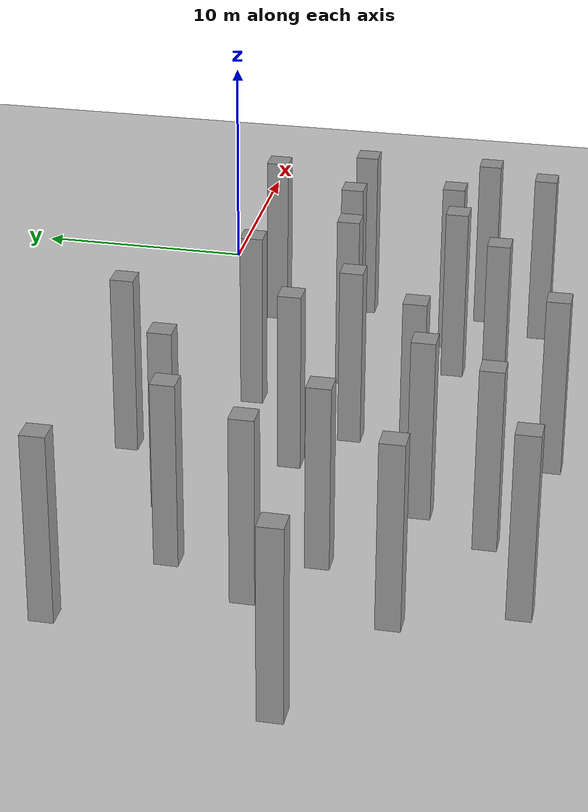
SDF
<sdf version="1.7">
 <world name="default">
  <model name="ground_plane">
   <static>1</static>
   <link name="link">
    <collision name="collision">
     <geometry><plane><normal>0 0 1</normal><size>100 100</size></plane></geometry>
     <surface>
      <contact><collide_bitmask>65535</collide_bitmask></contact>
      <friction><ode><mu>100</mu><mu2>50</mu2></ode></friction>
     </surface>
    </collision>
    <visual name="visual">
     <cast_shadows>0</cast_shadows>
     <geometry><plane><normal>0 0 1</normal><size>100 100</size></plane></geometry>
     <material>
      <script><uri>file://media/materials/scripts/gazebo.material</uri><name>Gazebo/Grey</name></script>
     </material>
    </visual>
   </link>
  </model>
  <model name="unit_box_static56">
   <link name="link">
    <inertial>
     <mass>1</mass>
     <inertia>
      <ixx>0.166667</ixx>
      <ixy>0</ixy>
      <ixz>0</ixz>
      <iyy>0.166667</iyy>
      <iyz>0</iyz>
      <izz>0.166667</izz>
     </inertia>
    </inertial>
    <visual name="visual">
     <geometry><box><size>1 1 8</size></box></geometry>
     <material>
      <script><name>Gazebo/Grey</name><uri>file://media/materials/scripts/gazebo.material</uri></script>
      <shader type="pixel"/>
     </material>
    </visual>
    <collision name="collision">
     <geometry><box><size>1 1 8</size></box></geometry>
     <surface>
      <friction>
       <ode><mu>1</mu><mu2>1</mu2><fdir1>0 0 0</fdir1><slip1>0</slip1><slip2>0</slip2></ode>
       <torsional>
        <coefficient>1</coefficient>
        <patch_radius>0</patch_radius>
        <surface_radius>0</surface_radius>
        <use_patch_radius>1</use_patch_radius>
        <ode><slip>0</slip></ode>
       </torsional>
      </friction>
      <bounce><restitution_coefficient>0</restitution_coefficient><threshold>1e+06</threshold></bounce>
      <contact>
       <collide_without_contact>0</collide_without_contact>
       <collide_without_contact_bitmask>1</collide_without_contact_bitmask>
       <collide_bitmask>1</collide_bitmask>
       <ode>
        <soft_cfm>0</soft_cfm>
        <soft_erp>0.2</soft_erp>
        <kp>1e+13</kp>
        <kd>1</kd>
        <max_vel>0.01</max_vel>
        <min_depth>0</min_depth>
       </ode>
       <bullet>
        <split_impulse>1</split_impulse>
        <split_impulse_penetration_threshold>-0.01</split_impulse_penetration_threshold>
        <soft_cfm>0</soft_cfm>
        <soft_erp>0.2</soft_erp>
        <kp>1e+13</kp>
        <kd>1</kd>
       </bullet>
      </contact>
     </surface>
    </collision>
   </link>
   <static>1</static>
   <pose>-10.8013 -12.5136 4 0 -0 0</pose>
  </model>
  <model name="unit_box_static57">
   <link name="link">
    <inertial>
     <mass>1</mass>
     <inertia>
      <ixx>0.166667</ixx>
      <ixy>0</ixy>
      <ixz>0</ixz>
      <iyy>0.166667</iyy>
      <iyz>0</iyz>
      <izz>0.166667</izz>
     </inertia>
    </inertial>
    <visual name="visual">
     <geometry><box><size>1 1 8</size></box></geometry>
     <material>
      <script><name>Gazebo/Grey</name><uri>file://media/materials/scripts/gazebo.material</uri></script>
      <shader type="pixel"/>
     </material>
    </visual>
    <collision name="collision">
     <geometry><box><size>1 1 8</size></box></geometry>
     <surface>
      <friction>
       <ode><mu>1</mu><mu2>1</mu2><fdir1>0 0 0</fdir1><slip1>0</slip1><slip2>0</slip2></ode>
       <torsional>
        <coefficient>1</coefficient>
        <patch_radius>0</patch_radius>
        <surface_radius>0</surface_radius>
        <use_patch_radius>1</use_patch_radius>
        <ode><slip>0</slip></ode>
       </torsional>
      </friction>
      <bounce><restitution_coefficient>0</restitution_coefficient><threshold>1e+06</threshold></bounce>
      <contact>
       <collide_without_contact>0</collide_without_contact>
       <collide_without_contact_bitmask>1</collide_without_contact_bitmask>
       <collide_bitmask>1</collide_bitmask>
       <ode>
        <soft_cfm>0</soft_cfm>
        <soft_erp>0.2</soft_erp>
        <kp>1e+13</kp>
        <kd>1</kd>
        <max_vel>0.01</max_vel>
        <min_depth>0</min_depth>
       </ode>
       <bullet>
        <split_impulse>1</split_impulse>
        <split_impulse_penetration_threshold>-0.01</split_impulse_penetration_threshold>
        <soft_cfm>0</soft_cfm>
        <soft_erp>0.2</soft_erp>
        <kp>1e+13</kp>
        <kd>1</kd>
       </bullet>
      </contact>
     </surface>
    </collision>
   </link>
   <static>1</static>
   <pose>-39.0012 -9.92582 4 0 -0 0</pose>
  </model>
  <model name="unit_box_static58">
   <link name="link">
    <inertial>
     <mass>1</mass>
     <inertia>
      <ixx>0.166667</ixx>
      <ixy>0</ixy>
      <ixz>0</ixz>
      <iyy>0.166667</iyy>
      <iyz>0</iyz>
      <izz>0.166667</izz>
     </inertia>
    </inertial>
    <visual name="visual">
     <geometry><box><size>1 1 8</size></box></geometry>
     <material>
      <script><name>Gazebo/Grey</name><uri>file://media/materials/scripts/gazebo.material</uri></script>
      <shader type="pixel"/>
     </material>
    </visual>
    <collision name="collision">
     <geometry><box><size>1 1 8</size></box></geometry>
     <surface>
      <friction>
       <ode><mu>1</mu><mu2>1</mu2><fdir1>0 0 0</fdir1><slip1>0</slip1><slip2>0</slip2></ode>
       <torsional>
        <coefficient>1</coefficient>
        <patch_radius>0</patch_radius>
        <surface_radius>0</surface_radius>
        <use_patch_radius>1</use_patch_radius>
        <ode><slip>0</slip></ode>
       </torsional>
      </friction>
      <bounce><restitution_coefficient>0</restitution_coefficient><threshold>1e+06</threshold></bounce>
      <contact>
       <collide_without_contact>0</collide_without_contact>
       <collide_without_contact_bitmask>1</collide_without_contact_bitmask>
       <collide_bitmask>1</collide_bitmask>
       <ode>
        <soft_cfm>0</soft_cfm>
        <soft_erp>0.2</soft_erp>
        <kp>1e+13</kp>
        <kd>1</kd>
        <max_vel>0.01</max_vel>
        <min_depth>0</min_depth>
       </ode>
       <bullet>
        <split_impulse>1</split_impulse>
        <split_impulse_penetration_threshold>-0.01</split_impulse_penetration_threshold>
        <soft_cfm>0</soft_cfm>
        <soft_erp>0.2</soft_erp>
        <kp>1e+13</kp>
        <kd>1</kd>
       </bullet>
      </contact>
     </surface>
    </collision>
   </link>
   <static>1</static>
   <pose>-34.4356 -0.088908 4 0 -0 0</pose>
  </model>
  <model name="unit_box_static63">
   <link name="link">
    <inertial>
     <mass>1</mass>
     <inertia>
      <ixx>0.166667</ixx>
      <ixy>0</ixy>
      <ixz>0</ixz>
      <iyy>0.166667</iyy>
      <iyz>0</iyz>
      <izz>0.166667</izz>
     </inertia>
    </inertial>
    <visual name="visual">
     <geometry><box><size>1 1 8</size></box></geometry>
     <material>
      <script><name>Gazebo/Grey</name><uri>file://media/materials/scripts/gazebo.material</uri></script>
      <shader type="pixel"/>
     </material>
    </visual>
    <collision name="collision">
     <geometry><box><size>1 1 8</size></box></geometry>
     <surface>
      <friction>
       <ode><mu>1</mu><mu2>1</mu2><fdir1>0 0 0</fdir1><slip1>0</slip1><slip2>0</slip2></ode>
       <torsional>
        <coefficient>1</coefficient>
        <patch_radius>0</patch_radius>
        <surface_radius>0</surface_radius>
        <use_patch_radius>1</use_patch_radius>
        <ode><slip>0</slip></ode>
       </torsional>
      </friction>
      <bounce><restitution_coefficient>0</restitution_coefficient><threshold>1e+06</threshold></bounce>
      <contact>
       <collide_without_contact>0</collide_without_contact>
       <collide_without_contact_bitmask>1</collide_without_contact_bitmask>
       <collide_bitmask>1</collide_bitmask>
       <ode>
        <soft_cfm>0</soft_cfm>
        <soft_erp>0.2</soft_erp>
        <kp>1e+13</kp>
        <kd>1</kd>
        <max_vel>0.01</max_vel>
        <min_depth>0</min_depth>
       </ode>
       <bullet>
        <split_impulse>1</split_impulse>
        <split_impulse_penetration_threshold>-0.01</split_impulse_penetration_threshold>
        <soft_cfm>0</soft_cfm>
        <soft_erp>0.2</soft_erp>
        <kp>1e+13</kp>
        <kd>1</kd>
       </bullet>
      </contact>
     </surface>
    </collision>
   </link>
   <static>1</static>
   <pose>-29.5161 -3.72993 4 0 -0 0</pose>
  </model>
  <model name="unit_box_static65">
   <link name="link">
    <inertial>
     <mass>1</mass>
     <inertia>
      <ixx>0.166667</ixx>
      <ixy>0</ixy>
      <ixz>0</ixz>
      <iyy>0.166667</iyy>
      <iyz>0</iyz>
      <izz>0.166667</izz>
     </inertia>
    </inertial>
    <visual name="visual">
     <geometry><box><size>1 1 8</size></box></geometry>
     <material>
      <script><name>Gazebo/Grey</name><uri>file://media/materials/scripts/gazebo.material</uri></script>
      <shader type="pixel"/>
     </material>
    </visual>
    <collision name="collision">
     <geometry><box><size>1 1 8</size></box></geometry>
     <surface>
      <friction>
       <ode><mu>1</mu><mu2>1</mu2><fdir1>0 0 0</fdir1><slip1>0</slip1><slip2>0</slip2></ode>
       <torsional>
        <coefficient>1</coefficient>
        <patch_radius>0</patch_radius>
        <surface_radius>0</surface_radius>
        <use_patch_radius>1</use_patch_radius>
        <ode><slip>0</slip></ode>
       </torsional>
      </friction>
      <bounce><restitution_coefficient>0</restitution_coefficient><threshold>1e+06</threshold></bounce>
      <contact>
       <collide_without_contact>0</collide_without_contact>
       <collide_without_contact_bitmask>1</collide_without_contact_bitmask>
       <collide_bitmask>1</collide_bitmask>
       <ode>
        <soft_cfm>0</soft_cfm>
        <soft_erp>0.2</soft_erp>
        <kp>1e+13</kp>
        <kd>1</kd>
        <max_vel>0.01</max_vel>
        <min_depth>0</min_depth>
       </ode>
       <bullet>
        <split_impulse>1</split_impulse>
        <split_impulse_penetration_threshold>-0.01</split_impulse_penetration_threshold>
        <soft_cfm>0</soft_cfm>
        <soft_erp>0.2</soft_erp>
        <kp>1e+13</kp>
        <kd>1</kd>
       </bullet>
      </contact>
     </surface>
    </collision>
   </link>
   <static>1</static>
   <pose>-20.7592 -6.89951 4 0 -0 0</pose>
  </model>
  <model name="unit_box_static67">
   <link name="link">
    <inertial>
     <mass>1</mass>
     <inertia>
      <ixx>0.166667</ixx>
      <ixy>0</ixy>
      <ixz>0</ixz>
      <iyy>0.166667</iyy>
      <iyz>0</iyz>
      <izz>0.166667</izz>
     </inertia>
    </inertial>
    <visual name="visual">
     <geometry><box><size>1 1 8</size></box></geometry>
     <material>
      <script><name>Gazebo/Grey</name><uri>file://media/materials/scripts/gazebo.material</uri></script>
      <shader type="pixel"/>
     </material>
    </visual>
    <collision name="collision">
     <geometry><box><size>1 1 8</size></box></geometry>
     <surface>
      <friction>
       <ode><mu>1</mu><mu2>1</mu2><fdir1>0 0 0</fdir1><slip1>0</slip1><slip2>0</slip2></ode>
       <torsional>
        <coefficient>1</coefficient>
        <patch_radius>0</patch_radius>
        <surface_radius>0</surface_radius>
        <use_patch_radius>1</use_patch_radius>
        <ode><slip>0</slip></ode>
       </torsional>
      </friction>
      <bounce><restitution_coefficient>0</restitution_coefficient><threshold>1e+06</threshold></bounce>
      <contact>
       <collide_without_contact>0</collide_without_contact>
       <collide_without_contact_bitmask>1</collide_without_contact_bitmask>
       <collide_bitmask>1</collide_bitmask>
       <ode>
        <soft_cfm>0</soft_cfm>
        <soft_erp>0.2</soft_erp>
        <kp>1e+13</kp>
        <kd>1</kd>
        <max_vel>0.01</max_vel>
        <min_depth>0</min_depth>
       </ode>
       <bullet>
        <split_impulse>1</split_impulse>
        <split_impulse_penetration_threshold>-0.01</split_impulse_penetration_threshold>
        <soft_cfm>0</soft_cfm>
        <soft_erp>0.2</soft_erp>
        <kp>1e+13</kp>
        <kd>1</kd>
       </bullet>
      </contact>
     </surface>
    </collision>
   </link>
   <static>1</static>
   <pose>-28.5535 -9.61759 4 0 -0 0</pose>
  </model>
  <model name="unit_box_static70">
   <link name="link">
    <inertial>
     <mass>1</mass>
     <inertia>
      <ixx>0.166667</ixx>
      <ixy>0</ixy>
      <ixz>0</ixz>
      <iyy>0.166667</iyy>
      <iyz>0</iyz>
      <izz>0.166667</izz>
     </inertia>
    </inertial>
    <visual name="visual">
     <geometry><box><size>1 1 8</size></box></geometry>
     <material>
      <script><name>Gazebo/Grey</name><uri>file://media/materials/scripts/gazebo.material</uri></script>
      <shader type="pixel"/>
     </material>
    </visual>
    <collision name="collision">
     <geometry><box><size>1 1 8</size></box></geometry>
     <surface>
      <friction>
       <ode><mu>1</mu><mu2>1</mu2><fdir1>0 0 0</fdir1><slip1>0</slip1><slip2>0</slip2></ode>
       <torsional>
        <coefficient>1</coefficient>
        <patch_radius>0</patch_radius>
        <surface_radius>0</surface_radius>
        <use_patch_radius>1</use_patch_radius>
        <ode><slip>0</slip></ode>
       </torsional>
      </friction>
      <bounce><restitution_coefficient>0</restitution_coefficient><threshold>1e+06</threshold></bounce>
      <contact>
       <collide_without_contact>0</collide_without_contact>
       <collide_without_contact_bitmask>1</collide_without_contact_bitmask>
       <collide_bitmask>1</collide_bitmask>
       <ode>
        <soft_cfm>0</soft_cfm>
        <soft_erp>0.2</soft_erp>
        <kp>1e+13</kp>
        <kd>1</kd>
        <max_vel>0.01</max_vel>
        <min_depth>0</min_depth>
       </ode>
       <bullet>
        <split_impulse>1</split_impulse>
        <split_impulse_penetration_threshold>-0.01</split_impulse_penetration_threshold>
        <soft_cfm>0</soft_cfm>
        <soft_erp>0.2</soft_erp>
        <kp>1e+13</kp>
        <kd>1</kd>
       </bullet>
      </contact>
     </surface>
    </collision>
   </link>
   <static>1</static>
   <pose>-6.10529 -15.982 4 0 -0 0</pose>
  </model>
  <model name="unit_box_static74">
   <link name="link">
    <inertial>
     <mass>1</mass>
     <inertia>
      <ixx>0.166667</ixx>
      <ixy>0</ixy>
      <ixz>0</ixz>
      <iyy>0.166667</iyy>
      <iyz>0</iyz>
      <izz>0.166667</izz>
     </inertia>
    </inertial>
    <visual name="visual">
     <geometry><box><size>1 1 8</size></box></geometry>
     <material>
      <script><name>Gazebo/Grey</name><uri>file://media/materials/scripts/gazebo.material</uri></script>
      <shader type="pixel"/>
     </material>
    </visual>
    <collision name="collision">
     <geometry><box><size>1 1 8</size></box></geometry>
     <surface>
      <friction>
       <ode><mu>1</mu><mu2>1</mu2><fdir1>0 0 0</fdir1><slip1>0</slip1><slip2>0</slip2></ode>
       <torsional>
        <coefficient>1</coefficient>
        <patch_radius>0</patch_radius>
        <surface_radius>0</surface_radius>
        <use_patch_radius>1</use_patch_radius>
        <ode><slip>0</slip></ode>
       </torsional>
      </friction>
      <bounce><restitution_coefficient>0</restitution_coefficient><threshold>1e+06</threshold></bounce>
      <contact>
       <collide_without_contact>0</collide_without_contact>
       <collide_without_contact_bitmask>1</collide_without_contact_bitmask>
       <collide_bitmask>1</collide_bitmask>
       <ode>
        <soft_cfm>0</soft_cfm>
        <soft_erp>0.2</soft_erp>
        <kp>1e+13</kp>
        <kd>1</kd>
        <max_vel>0.01</max_vel>
        <min_depth>0</min_depth>
       </ode>
       <bullet>
        <split_impulse>1</split_impulse>
        <split_impulse_penetration_threshold>-0.01</split_impulse_penetration_threshold>
        <soft_cfm>0</soft_cfm>
        <soft_erp>0.2</soft_erp>
        <kp>1e+13</kp>
        <kd>1</kd>
       </bullet>
      </contact>
     </surface>
    </collision>
   </link>
   <static>1</static>
   <pose>-31.6275 -7.28073 4 0 -0 0</pose>
  </model>
  <model name="unit_box_static93">
   <link name="link">
    <inertial>
     <mass>1</mass>
     <inertia>
      <ixx>0.166667</ixx>
      <ixy>0</ixy>
      <ixz>0</ixz>
      <iyy>0.166667</iyy>
      <iyz>0</iyz>
      <izz>0.166667</izz>
     </inertia>
    </inertial>
    <visual name="visual">
     <geometry><box><size>1 1 8</size></box></geometry>
     <material>
      <script><name>Gazebo/Grey</name><uri>file://media/materials/scripts/gazebo.material</uri></script>
      <shader type="pixel"/>
     </material>
    </visual>
    <collision name="collision">
     <geometry><box><size>1 1 8</size></box></geometry>
     <surface>
      <friction>
       <ode><mu>1</mu><mu2>1</mu2><fdir1>0 0 0</fdir1><slip1>0</slip1><slip2>0</slip2></ode>
       <torsional>
        <coefficient>1</coefficient>
        <patch_radius>0</patch_radius>
        <surface_radius>0</surface_radius>
        <use_patch_radius>1</use_patch_radius>
        <ode><slip>0</slip></ode>
       </torsional>
      </friction>
      <bounce><restitution_coefficient>0</restitution_coefficient><threshold>1e+06</threshold></bounce>
      <contact>
       <collide_without_contact>0</collide_without_contact>
       <collide_without_contact_bitmask>1</collide_without_contact_bitmask>
       <collide_bitmask>1</collide_bitmask>
       <ode>
        <soft_cfm>0</soft_cfm>
        <soft_erp>0.2</soft_erp>
        <kp>1e+13</kp>
        <kd>1</kd>
        <max_vel>0.01</max_vel>
        <min_depth>0</min_depth>
       </ode>
       <bullet>
        <split_impulse>1</split_impulse>
        <split_impulse_penetration_threshold>-0.01</split_impulse_penetration_threshold>
        <soft_cfm>0</soft_cfm>
        <soft_erp>0.2</soft_erp>
        <kp>1e+13</kp>
        <kd>1</kd>
       </bullet>
      </contact>
     </surface>
    </collision>
   </link>
   <static>1</static>
   <pose>-25.8008 -15.9007 4 0 -0 0</pose>
  </model>
  <model name="unit_box_static109">
   <link name="link">
    <inertial>
     <mass>1</mass>
     <inertia>
      <ixx>0.166667</ixx>
      <ixy>0</ixy>
      <ixz>0</ixz>
      <iyy>0.166667</iyy>
      <iyz>0</iyz>
      <izz>0.166667</izz>
     </inertia>
    </inertial>
    <visual name="visual">
     <geometry><box><size>1 1 8</size></box></geometry>
     <material>
      <script><name>Gazebo/Grey</name><uri>file://media/materials/scripts/gazebo.material</uri></script>
      <shader type="pixel"/>
     </material>
    </visual>
    <collision name="collision">
     <geometry><box><size>1 1 8</size></box></geometry>
     <surface>
      <friction>
       <ode><mu>1</mu><mu2>1</mu2><fdir1>0 0 0</fdir1><slip1>0</slip1><slip2>0</slip2></ode>
       <torsional>
        <coefficient>1</coefficient>
        <patch_radius>0</patch_radius>
        <surface_radius>0</surface_radius>
        <use_patch_radius>1</use_patch_radius>
        <ode><slip>0</slip></ode>
       </torsional>
      </friction>
      <bounce><restitution_coefficient>0</restitution_coefficient><threshold>1e+06</threshold></bounce>
      <contact>
       <collide_without_contact>0</collide_without_contact>
       <collide_without_contact_bitmask>1</collide_without_contact_bitmask>
       <collide_bitmask>1</collide_bitmask>
       <ode>
        <soft_cfm>0</soft_cfm>
        <soft_erp>0.2</soft_erp>
        <kp>1e+13</kp>
        <kd>1</kd>
        <max_vel>0.01</max_vel>
        <min_depth>0</min_depth>
       </ode>
       <bullet>
        <split_impulse>1</split_impulse>
        <split_impulse_penetration_threshold>-0.01</split_impulse_penetration_threshold>
        <soft_cfm>0</soft_cfm>
        <soft_erp>0.2</soft_erp>
        <kp>1e+13</kp>
        <kd>1</kd>
       </bullet>
      </contact>
     </surface>
    </collision>
   </link>
   <static>1</static>
   <pose>-30.6474 -17.8183 4 0 -0 0</pose>
  </model>
  <model name="unit_box_static110">
   <link name="link">
    <inertial>
     <mass>1</mass>
     <inertia>
      <ixx>0.166667</ixx>
      <ixy>0</ixy>
      <ixz>0</ixz>
      <iyy>0.166667</iyy>
      <iyz>0</iyz>
      <izz>0.166667</izz>
     </inertia>
    </inertial>
    <visual name="visual">
     <geometry><box><size>1 1 8</size></box></geometry>
     <material>
      <script><name>Gazebo/Grey</name><uri>file://media/materials/scripts/gazebo.material</uri></script>
      <shader type="pixel"/>
     </material>
    </visual>
    <collision name="collision">
     <geometry><box><size>1 1 8</size></box></geometry>
     <surface>
      <friction>
       <ode><mu>1</mu><mu2>1</mu2><fdir1>0 0 0</fdir1><slip1>0</slip1><slip2>0</slip2></ode>
       <torsional>
        <coefficient>1</coefficient>
        <patch_radius>0</patch_radius>
        <surface_radius>0</surface_radius>
        <use_patch_radius>1</use_patch_radius>
        <ode><slip>0</slip></ode>
       </torsional>
      </friction>
      <bounce><restitution_coefficient>0</restitution_coefficient><threshold>1e+06</threshold></bounce>
      <contact>
       <collide_without_contact>0</collide_without_contact>
       <collide_without_contact_bitmask>1</collide_without_contact_bitmask>
       <collide_bitmask>1</collide_bitmask>
       <ode>
        <soft_cfm>0</soft_cfm>
        <soft_erp>0.2</soft_erp>
        <kp>1e+13</kp>
        <kd>1</kd>
        <max_vel>0.01</max_vel>
        <min_depth>0</min_depth>
       </ode>
       <bullet>
        <split_impulse>1</split_impulse>
        <split_impulse_penetration_threshold>-0.01</split_impulse_penetration_threshold>
        <soft_cfm>0</soft_cfm>
        <soft_erp>0.2</soft_erp>
        <kp>1e+13</kp>
        <kd>1</kd>
       </bullet>
      </contact>
     </surface>
    </collision>
   </link>
   <static>1</static>
   <pose>-8.92991 -7.44548 4 0 -0 0</pose>
  </model>
  <model name="unit_box_static115">
   <link name="link">
    <inertial>
     <mass>1</mass>
     <inertia>
      <ixx>0.166667</ixx>
      <ixy>0</ixy>
      <ixz>0</ixz>
      <iyy>0.166667</iyy>
      <iyz>0</iyz>
      <izz>0.166667</izz>
     </inertia>
    </inertial>
    <visual name="visual">
     <geometry><box><size>1 1 8</size></box></geometry>
     <material>
      <script><name>Gazebo/Grey</name><uri>file://media/materials/scripts/gazebo.material</uri></script>
      <shader type="pixel"/>
     </material>
    </visual>
    <collision name="collision">
     <geometry><box><size>1 1 8</size></box></geometry>
     <surface>
      <friction>
       <ode><mu>1</mu><mu2>1</mu2><fdir1>0 0 0</fdir1><slip1>0</slip1><slip2>0</slip2></ode>
       <torsional>
        <coefficient>1</coefficient>
        <patch_radius>0</patch_radius>
        <surface_radius>0</surface_radius>
        <use_patch_radius>1</use_patch_radius>
        <ode><slip>0</slip></ode>
       </torsional>
      </friction>
      <bounce><restitution_coefficient>0</restitution_coefficient><threshold>1e+06</threshold></bounce>
      <contact>
       <collide_without_contact>0</collide_without_contact>
       <collide_without_contact_bitmask>1</collide_without_contact_bitmask>
       <collide_bitmask>1</collide_bitmask>
       <ode>
        <soft_cfm>0</soft_cfm>
        <soft_erp>0.2</soft_erp>
        <kp>1e+13</kp>
        <kd>1</kd>
        <max_vel>0.01</max_vel>
        <min_depth>0</min_depth>
       </ode>
       <bullet>
        <split_impulse>1</split_impulse>
        <split_impulse_penetration_threshold>-0.01</split_impulse_penetration_threshold>
        <soft_cfm>0</soft_cfm>
        <soft_erp>0.2</soft_erp>
        <kp>1e+13</kp>
        <kd>1</kd>
       </bullet>
      </contact>
     </surface>
    </collision>
   </link>
   <static>1</static>
   <pose>-6.44825 -3.4496 4 0 -0 0</pose>
  </model>
  <model name="unit_box_static118">
   <link name="link">
    <inertial>
     <mass>1</mass>
     <inertia>
      <ixx>0.166667</ixx>
      <ixy>0</ixy>
      <ixz>0</ixz>
      <iyy>0.166667</iyy>
      <iyz>0</iyz>
      <izz>0.166667</izz>
     </inertia>
    </inertial>
    <visual name="visual">
     <geometry><box><size>1 1 8</size></box></geometry>
     <material>
      <script><name>Gazebo/Grey</name><uri>file://media/materials/scripts/gazebo.material</uri></script>
      <shader type="pixel"/>
     </material>
    </visual>
    <collision name="collision">
     <geometry><box><size>1 1 8</size></box></geometry>
     <surface>
      <friction>
       <ode><mu>1</mu><mu2>1</mu2><fdir1>0 0 0</fdir1><slip1>0</slip1><slip2>0</slip2></ode>
       <torsional>
        <coefficient>1</coefficient>
        <patch_radius>0</patch_radius>
        <surface_radius>0</surface_radius>
        <use_patch_radius>1</use_patch_radius>
        <ode><slip>0</slip></ode>
       </torsional>
      </friction>
      <bounce><restitution_coefficient>0</restitution_coefficient><threshold>1e+06</threshold></bounce>
      <contact>
       <collide_without_contact>0</collide_without_contact>
       <collide_without_contact_bitmask>1</collide_without_contact_bitmask>
       <collide_bitmask>1</collide_bitmask>
       <ode>
        <soft_cfm>0</soft_cfm>
        <soft_erp>0.2</soft_erp>
        <kp>1e+13</kp>
        <kd>1</kd>
        <max_vel>0.01</max_vel>
        <min_depth>0</min_depth>
       </ode>
       <bullet>
        <split_impulse>1</split_impulse>
        <split_impulse_penetration_threshold>-0.01</split_impulse_penetration_threshold>
        <soft_cfm>0</soft_cfm>
        <soft_erp>0.2</soft_erp>
        <kp>1e+13</kp>
        <kd>1</kd>
       </bullet>
      </contact>
     </surface>
    </collision>
   </link>
   <static>1</static>
   <pose>-13.8918 -14.7383 4 0 -0 0</pose>
  </model>
  <model name="unit_box_static131">
   <link name="link">
    <inertial>
     <mass>1</mass>
     <inertia>
      <ixx>0.166667</ixx>
      <ixy>0</ixy>
      <ixz>0</ixz>
      <iyy>0.166667</iyy>
      <iyz>0</iyz>
      <izz>0.166667</izz>
     </inertia>
    </inertial>
    <visual name="visual">
     <geometry><box><size>1 1 8</size></box></geometry>
     <material>
      <script><name>Gazebo/Grey</name><uri>file://media/materials/scripts/gazebo.material</uri></script>
      <shader type="pixel"/>
     </material>
    </visual>
    <collision name="collision">
     <geometry><box><size>1 1 8</size></box></geometry>
     <surface>
      <friction>
       <ode><mu>1</mu><mu2>1</mu2><fdir1>0 0 0</fdir1><slip1>0</slip1><slip2>0</slip2></ode>
       <torsional>
        <coefficient>1</coefficient>
        <patch_radius>0</patch_radius>
        <surface_radius>0</surface_radius>
        <use_patch_radius>1</use_patch_radius>
        <ode><slip>0</slip></ode>
       </torsional>
      </friction>
      <bounce><restitution_coefficient>0</restitution_coefficient><threshold>1e+06</threshold></bounce>
      <contact>
       <collide_without_contact>0</collide_without_contact>
       <collide_without_contact_bitmask>1</collide_without_contact_bitmask>
       <collide_bitmask>1</collide_bitmask>
       <ode>
        <soft_cfm>0</soft_cfm>
        <soft_erp>0.2</soft_erp>
        <kp>1e+13</kp>
        <kd>1</kd>
        <max_vel>0.01</max_vel>
        <min_depth>0</min_depth>
       </ode>
       <bullet>
        <split_impulse>1</split_impulse>
        <split_impulse_penetration_threshold>-0.01</split_impulse_penetration_threshold>
        <soft_cfm>0</soft_cfm>
        <soft_erp>0.2</soft_erp>
        <kp>1e+13</kp>
        <kd>1</kd>
       </bullet>
      </contact>
     </surface>
    </collision>
   </link>
   <static>1</static>
   <pose>-15.2481 -4.09292 4 0 -0 0</pose>
  </model>
  <model name="unit_box_static134">
   <link name="link">
    <inertial>
     <mass>1</mass>
     <inertia>
      <ixx>0.166667</ixx>
      <ixy>0</ixy>
      <ixz>0</ixz>
      <iyy>0.166667</iyy>
      <iyz>0</iyz>
      <izz>0.166667</izz>
     </inertia>
    </inertial>
    <visual name="visual">
     <geometry><box><size>1 1 8</size></box></geometry>
     <material>
      <script><name>Gazebo/Grey</name><uri>file://media/materials/scripts/gazebo.material</uri></script>
      <shader type="pixel"/>
     </material>
    </visual>
    <collision name="collision">
     <geometry><box><size>1 1 8</size></box></geometry>
     <surface>
      <friction>
       <ode><mu>1</mu><mu2>1</mu2><fdir1>0 0 0</fdir1><slip1>0</slip1><slip2>0</slip2></ode>
       <torsional>
        <coefficient>1</coefficient>
        <patch_radius>0</patch_radius>
        <surface_radius>0</surface_radius>
        <use_patch_radius>1</use_patch_radius>
        <ode><slip>0</slip></ode>
       </torsional>
      </friction>
      <bounce><restitution_coefficient>0</restitution_coefficient><threshold>1e+06</threshold></bounce>
      <contact>
       <collide_without_contact>0</collide_without_contact>
       <collide_without_contact_bitmask>1</collide_without_contact_bitmask>
       <collide_bitmask>1</collide_bitmask>
       <ode>
        <soft_cfm>0</soft_cfm>
        <soft_erp>0.2</soft_erp>
        <kp>1e+13</kp>
        <kd>1</kd>
        <max_vel>0.01</max_vel>
        <min_depth>0</min_depth>
       </ode>
       <bullet>
        <split_impulse>1</split_impulse>
        <split_impulse_penetration_threshold>-0.01</split_impulse_penetration_threshold>
        <soft_cfm>0</soft_cfm>
        <soft_erp>0.2</soft_erp>
        <kp>1e+13</kp>
        <kd>1</kd>
       </bullet>
      </contact>
     </surface>
    </collision>
   </link>
   <static>1</static>
   <pose>-12.615 -7.92197 4 0 -0 0</pose>
  </model>
  <model name="unit_box_static149">
   <link name="link">
    <inertial>
     <mass>1</mass>
     <inertia>
      <ixx>0.166667</ixx>
      <ixy>0</ixy>
      <ixz>0</ixz>
      <iyy>0.166667</iyy>
      <iyz>0</iyz>
      <izz>0.166667</izz>
     </inertia>
    </inertial>
    <visual name="visual">
     <geometry><box><size>1 1 8</size></box></geometry>
     <material>
      <script><name>Gazebo/Grey</name><uri>file://media/materials/scripts/gazebo.material</uri></script>
      <shader type="pixel"/>
     </material>
    </visual>
    <collision name="collision">
     <geometry><box><size>1 1 8</size></box></geometry>
     <surface>
      <friction>
       <ode><mu>1</mu><mu2>1</mu2><fdir1>0 0 0</fdir1><slip1>0</slip1><slip2>0</slip2></ode>
       <torsional>
        <coefficient>1</coefficient>
        <patch_radius>0</patch_radius>
        <surface_radius>0</surface_radius>
        <use_patch_radius>1</use_patch_radius>
        <ode><slip>0</slip></ode>
       </torsional>
      </friction>
      <bounce><restitution_coefficient>0</restitution_coefficient><threshold>1e+06</threshold></bounce>
      <contact>
       <collide_without_contact>0</collide_without_contact>
       <collide_without_contact_bitmask>1</collide_without_contact_bitmask>
       <collide_bitmask>1</collide_bitmask>
       <ode>
        <soft_cfm>0</soft_cfm>
        <soft_erp>0.2</soft_erp>
        <kp>1e+13</kp>
        <kd>1</kd>
        <max_vel>0.01</max_vel>
        <min_depth>0</min_depth>
       </ode>
       <bullet>
        <split_impulse>1</split_impulse>
        <split_impulse_penetration_threshold>-0.01</split_impulse_penetration_threshold>
        <soft_cfm>0</soft_cfm>
        <soft_erp>0.2</soft_erp>
        <kp>1e+13</kp>
        <kd>1</kd>
       </bullet>
      </contact>
     </surface>
    </collision>
   </link>
   <static>1</static>
   <pose>-4.87173 -7.44154 4 0 -0 0</pose>
  </model>
  <model name="unit_box_static152">
   <link name="link">
    <inertial>
     <mass>1</mass>
     <inertia>
      <ixx>0.166667</ixx>
      <ixy>0</ixy>
      <ixz>0</ixz>
      <iyy>0.166667</iyy>
      <iyz>0</iyz>
      <izz>0.166667</izz>
     </inertia>
    </inertial>
    <visual name="visual">
     <geometry><box><size>1 1 8</size></box></geometry>
     <material>
      <script><name>Gazebo/Grey</name><uri>file://media/materials/scripts/gazebo.material</uri></script>
      <shader type="pixel"/>
     </material>
    </visual>
    <collision name="collision">
     <geometry><box><size>1 1 8</size></box></geometry>
     <surface>
      <friction>
       <ode><mu>1</mu><mu2>1</mu2><fdir1>0 0 0</fdir1><slip1>0</slip1><slip2>0</slip2></ode>
       <torsional>
        <coefficient>1</coefficient>
        <patch_radius>0</patch_radius>
        <surface_radius>0</surface_radius>
        <use_patch_radius>1</use_patch_radius>
        <ode><slip>0</slip></ode>
       </torsional>
      </friction>
      <bounce><restitution_coefficient>0</restitution_coefficient><threshold>1e+06</threshold></bounce>
      <contact>
       <collide_without_contact>0</collide_without_contact>
       <collide_without_contact_bitmask>1</collide_without_contact_bitmask>
       <collide_bitmask>1</collide_bitmask>
       <ode>
        <soft_cfm>0</soft_cfm>
        <soft_erp>0.2</soft_erp>
        <kp>1e+13</kp>
        <kd>1</kd>
        <max_vel>0.01</max_vel>
        <min_depth>0</min_depth>
       </ode>
       <bullet>
        <split_impulse>1</split_impulse>
        <split_impulse_penetration_threshold>-0.01</split_impulse_penetration_threshold>
        <soft_cfm>0</soft_cfm>
        <soft_erp>0.2</soft_erp>
        <kp>1e+13</kp>
        <kd>1</kd>
       </bullet>
      </contact>
     </surface>
    </collision>
   </link>
   <static>1</static>
   <pose>-20.4253 -12.0736 4 0 -0 0</pose>
  </model>
  <model name="unit_box_static154">
   <link name="link">
    <inertial>
     <mass>1</mass>
     <inertia>
      <ixx>0.166667</ixx>
      <ixy>0</ixy>
      <ixz>0</ixz>
      <iyy>0.166667</iyy>
      <iyz>0</iyz>
      <izz>0.166667</izz>
     </inertia>
    </inertial>
    <visual name="visual">
     <geometry><box><size>1 1 8</size></box></geometry>
     <material>
      <script><name>Gazebo/Grey</name><uri>file://media/materials/scripts/gazebo.material</uri></script>
      <shader type="pixel"/>
     </material>
    </visual>
    <collision name="collision">
     <geometry><box><size>1 1 8</size></box></geometry>
     <surface>
      <friction>
       <ode><mu>1</mu><mu2>1</mu2><fdir1>0 0 0</fdir1><slip1>0</slip1><slip2>0</slip2></ode>
       <torsional>
        <coefficient>1</coefficient>
        <patch_radius>0</patch_radius>
        <surface_radius>0</surface_radius>
        <use_patch_radius>1</use_patch_radius>
        <ode><slip>0</slip></ode>
       </torsional>
      </friction>
      <bounce><restitution_coefficient>0</restitution_coefficient><threshold>1e+06</threshold></bounce>
      <contact>
       <collide_without_contact>0</collide_without_contact>
       <collide_without_contact_bitmask>1</collide_without_contact_bitmask>
       <collide_bitmask>1</collide_bitmask>
       <ode>
        <soft_cfm>0</soft_cfm>
        <soft_erp>0.2</soft_erp>
        <kp>1e+13</kp>
        <kd>1</kd>
        <max_vel>0.01</max_vel>
        <min_depth>0</min_depth>
       </ode>
       <bullet>
        <split_impulse>1</split_impulse>
        <split_impulse_penetration_threshold>-0.01</split_impulse_penetration_threshold>
        <soft_cfm>0</soft_cfm>
        <soft_erp>0.2</soft_erp>
        <kp>1e+13</kp>
        <kd>1</kd>
       </bullet>
      </contact>
     </surface>
    </collision>
   </link>
   <static>1</static>
   <pose>-25.1799 -2.50954 4 0 -0 0</pose>
  </model>
  <model name="unit_box_static167">
   <link name="link">
    <inertial>
     <mass>1</mass>
     <inertia>
      <ixx>0.166667</ixx>
      <ixy>0</ixy>
      <ixz>0</ixz>
      <iyy>0.166667</iyy>
      <iyz>0</iyz>
      <izz>0.166667</izz>
     </inertia>
    </inertial>
    <visual name="visual">
     <geometry><box><size>1 1 8</size></box></geometry>
     <material>
      <script><name>Gazebo/Grey</name><uri>file://media/materials/scripts/gazebo.material</uri></script>
      <shader type="pixel"/>
     </material>
    </visual>
    <collision name="collision">
     <geometry><box><size>1 1 8</size></box></geometry>
     <surface>
      <friction>
       <ode><mu>1</mu><mu2>1</mu2><fdir1>0 0 0</fdir1><slip1>0</slip1><slip2>0</slip2></ode>
       <torsional>
        <coefficient>1</coefficient>
        <patch_radius>0</patch_radius>
        <surface_radius>0</surface_radius>
        <use_patch_radius>1</use_patch_radius>
        <ode><slip>0</slip></ode>
       </torsional>
      </friction>
      <bounce><restitution_coefficient>0</restitution_coefficient><threshold>1e+06</threshold></bounce>
      <contact>
       <collide_without_contact>0</collide_without_contact>
       <collide_without_contact_bitmask>1</collide_without_contact_bitmask>
       <collide_bitmask>1</collide_bitmask>
       <ode>
        <soft_cfm>0</soft_cfm>
        <soft_erp>0.2</soft_erp>
        <kp>1e+13</kp>
        <kd>1</kd>
        <max_vel>0.01</max_vel>
        <min_depth>0</min_depth>
       </ode>
       <bullet>
        <split_impulse>1</split_impulse>
        <split_impulse_penetration_threshold>-0.01</split_impulse_penetration_threshold>
        <soft_cfm>0</soft_cfm>
        <soft_erp>0.2</soft_erp>
        <kp>1e+13</kp>
        <kd>1</kd>
       </bullet>
      </contact>
     </surface>
    </collision>
   </link>
   <static>1</static>
   <pose>-32.3381 -13.06 4 0 -0 0</pose>
  </model>
  <model name="unit_box_static171">
   <link name="link">
    <inertial>
     <mass>1</mass>
     <inertia>
      <ixx>0.166667</ixx>
      <ixy>0</ixy>
      <ixz>0</ixz>
      <iyy>0.166667</iyy>
      <iyz>0</iyz>
      <izz>0.166667</izz>
     </inertia>
    </inertial>
    <visual name="visual">
     <geometry><box><size>1 1 8</size></box></geometry>
     <material>
      <script><name>Gazebo/Grey</name><uri>file://media/materials/scripts/gazebo.material</uri></script>
      <shader type="pixel"/>
     </material>
    </visual>
    <collision name="collision">
     <geometry><box><size>1 1 8</size></box></geometry>
     <surface>
      <friction>
       <ode><mu>1</mu><mu2>1</mu2><fdir1>0 0 0</fdir1><slip1>0</slip1><slip2>0</slip2></ode>
       <torsional>
        <coefficient>1</coefficient>
        <patch_radius>0</patch_radius>
        <surface_radius>0</surface_radius>
        <use_patch_radius>1</use_patch_radius>
        <ode><slip>0</slip></ode>
       </torsional>
      </friction>
      <bounce><restitution_coefficient>0</restitution_coefficient><threshold>1e+06</threshold></bounce>
      <contact>
       <collide_without_contact>0</collide_without_contact>
       <collide_without_contact_bitmask>1</collide_without_contact_bitmask>
       <collide_bitmask>1</collide_bitmask>
       <ode>
        <soft_cfm>0</soft_cfm>
        <soft_erp>0.2</soft_erp>
        <kp>1e+13</kp>
        <kd>1</kd>
        <max_vel>0.01</max_vel>
        <min_depth>0</min_depth>
       </ode>
       <bullet>
        <split_impulse>1</split_impulse>
        <split_impulse_penetration_threshold>-0.01</split_impulse_penetration_threshold>
        <soft_cfm>0</soft_cfm>
        <soft_erp>0.2</soft_erp>
        <kp>1e+13</kp>
        <kd>1</kd>
       </bullet>
      </contact>
     </surface>
    </collision>
   </link>
   <static>1</static>
   <pose>-19.0124 -17.8037 4 0 -0 0</pose>
  </model>
  <model name="unit_box_static172">
   <link name="link">
    <inertial>
     <mass>1</mass>
     <inertia>
      <ixx>0.166667</ixx>
      <ixy>0</ixy>
      <ixz>0</ixz>
      <iyy>0.166667</iyy>
      <iyz>0</iyz>
      <izz>0.166667</izz>
     </inertia>
    </inertial>
    <visual name="visual">
     <geometry><box><size>1 1 8</size></box></geometry>
     <material>
      <script><name>Gazebo/Grey</name><uri>file://media/materials/scripts/gazebo.material</uri></script>
      <shader type="pixel"/>
     </material>
    </visual>
    <collision name="collision">
     <geometry><box><size>1 1 8</size></box></geometry>
     <surface>
      <friction>
       <ode><mu>1</mu><mu2>1</mu2><fdir1>0 0 0</fdir1><slip1>0</slip1><slip2>0</slip2></ode>
       <torsional>
        <coefficient>1</coefficient>
        <patch_radius>0</patch_radius>
        <surface_radius>0</surface_radius>
        <use_patch_radius>1</use_patch_radius>
        <ode><slip>0</slip></ode>
       </torsional>
      </friction>
      <bounce><restitution_coefficient>0</restitution_coefficient><threshold>1e+06</threshold></bounce>
      <contact>
       <collide_without_contact>0</collide_without_contact>
       <collide_without_contact_bitmask>1</collide_without_contact_bitmask>
       <collide_bitmask>1</collide_bitmask>
       <ode>
        <soft_cfm>0</soft_cfm>
        <soft_erp>0.2</soft_erp>
        <kp>1e+13</kp>
        <kd>1</kd>
        <max_vel>0.01</max_vel>
        <min_depth>0</min_depth>
       </ode>
       <bullet>
        <split_impulse>1</split_impulse>
        <split_impulse_penetration_threshold>-0.01</split_impulse_penetration_threshold>
        <soft_cfm>0</soft_cfm>
        <soft_erp>0.2</soft_erp>
        <kp>1e+13</kp>
        <kd>1</kd>
       </bullet>
      </contact>
     </surface>
    </collision>
   </link>
   <static>1</static>
   <pose>-23.8933 -12.9396 4 0 -0 0</pose>
  </model>
  <model name="unit_box_static174">
   <link name="link">
    <inertial>
     <mass>1</mass>
     <inertia>
      <ixx>0.166667</ixx>
      <ixy>0</ixy>
      <ixz>0</ixz>
      <iyy>0.166667</iyy>
      <iyz>0</iyz>
      <izz>0.166667</izz>
     </inertia>
    </inertial>
    <visual name="visual">
     <geometry><box><size>1 1 8</size></box></geometry>
     <material>
      <script><name>Gazebo/Grey</name><uri>file://media/materials/scripts/gazebo.material</uri></script>
      <shader type="pixel"/>
     </material>
    </visual>
    <collision name="collision">
     <geometry><box><size>1 1 8</size></box></geometry>
     <surface>
      <friction>
       <ode><mu>1</mu><mu2>1</mu2><fdir1>0 0 0</fdir1><slip1>0</slip1><slip2>0</slip2></ode>
       <torsional>
        <coefficient>1</coefficient>
        <patch_radius>0</patch_radius>
        <surface_radius>0</surface_radius>
        <use_patch_radius>1</use_patch_radius>
        <ode><slip>0</slip></ode>
       </torsional>
      </friction>
      <bounce><restitution_coefficient>0</restitution_coefficient><threshold>1e+06</threshold></bounce>
      <contact>
       <collide_without_contact>0</collide_without_contact>
       <collide_without_contact_bitmask>1</collide_without_contact_bitmask>
       <collide_bitmask>1</collide_bitmask>
       <ode>
        <soft_cfm>0</soft_cfm>
        <soft_erp>0.2</soft_erp>
        <kp>1e+13</kp>
        <kd>1</kd>
        <max_vel>0.01</max_vel>
        <min_depth>0</min_depth>
       </ode>
       <bullet>
        <split_impulse>1</split_impulse>
        <split_impulse_penetration_threshold>-0.01</split_impulse_penetration_threshold>
        <soft_cfm>0</soft_cfm>
        <soft_erp>0.2</soft_erp>
        <kp>1e+13</kp>
        <kd>1</kd>
       </bullet>
      </contact>
     </surface>
    </collision>
   </link>
   <static>1</static>
   <pose>-17.9555 -9.00298 4 0 -0 0</pose>
  </model>
  <model name="unit_box_static176">
   <link name="link">
    <inertial>
     <mass>1</mass>
     <inertia>
      <ixx>0.166667</ixx>
      <ixy>0</ixy>
      <ixz>0</ixz>
      <iyy>0.166667</iyy>
      <iyz>0</iyz>
      <izz>0.166667</izz>
     </inertia>
    </inertial>
    <visual name="visual">
     <geometry><box><size>1 1 8</size></box></geometry>
     <material>
      <script><name>Gazebo/Grey</name><uri>file://media/materials/scripts/gazebo.material</uri></script>
      <shader type="pixel"/>
     </material>
    </visual>
    <collision name="collision">
     <geometry><box><size>1 1 8</size></box></geometry>
     <surface>
      <friction>
       <ode><mu>1</mu><mu2>1</mu2><fdir1>0 0 0</fdir1><slip1>0</slip1><slip2>0</slip2></ode>
       <torsional>
        <coefficient>1</coefficient>
        <patch_radius>0</patch_radius>
        <surface_radius>0</surface_radius>
        <use_patch_radius>1</use_patch_radius>
        <ode><slip>0</slip></ode>
       </torsional>
      </friction>
      <bounce><restitution_coefficient>0</restitution_coefficient><threshold>1e+06</threshold></bounce>
      <contact>
       <collide_without_contact>0</collide_without_contact>
       <collide_without_contact_bitmask>1</collide_without_contact_bitmask>
       <collide_bitmask>1</collide_bitmask>
       <ode>
        <soft_cfm>0</soft_cfm>
        <soft_erp>0.2</soft_erp>
        <kp>1e+13</kp>
        <kd>1</kd>
        <max_vel>0.01</max_vel>
        <min_depth>0</min_depth>
       </ode>
       <bullet>
        <split_impulse>1</split_impulse>
        <split_impulse_penetration_threshold>-0.01</split_impulse_penetration_threshold>
        <soft_cfm>0</soft_cfm>
        <soft_erp>0.2</soft_erp>
        <kp>1e+13</kp>
        <kd>1</kd>
       </bullet>
      </contact>
     </surface>
    </collision>
   </link>
   <static>1</static>
   <pose>-4.80168 -13.2587 4 0 -0 0</pose>
  </model>
  <model name="unit_box_static184">
   <link name="link">
    <inertial>
     <mass>1</mass>
     <inertia>
      <ixx>0.166667</ixx>
      <ixy>0</ixy>
      <ixz>0</ixz>
      <iyy>0.166667</iyy>
      <iyz>0</iyz>
      <izz>0.166667</izz>
     </inertia>
    </inertial>
    <visual name="visual">
     <geometry><box><size>1 1 8</size></box></geometry>
     <material>
      <script><name>Gazebo/Grey</name><uri>file://media/materials/scripts/gazebo.material</uri></script>
      <shader type="pixel"/>
     </material>
    </visual>
    <collision name="collision">
     <geometry><box><size>1 1 8</size></box></geometry>
     <surface>
      <friction>
       <ode><mu>1</mu><mu2>1</mu2><fdir1>0 0 0</fdir1><slip1>0</slip1><slip2>0</slip2></ode>
       <torsional>
        <coefficient>1</coefficient>
        <patch_radius>0</patch_radius>
        <surface_radius>0</surface_radius>
        <use_patch_radius>1</use_patch_radius>
        <ode><slip>0</slip></ode>
       </torsional>
      </friction>
      <bounce><restitution_coefficient>0</restitution_coefficient><threshold>1e+06</threshold></bounce>
      <contact>
       <collide_without_contact>0</collide_without_contact>
       <collide_without_contact_bitmask>1</collide_without_contact_bitmask>
       <collide_bitmask>1</collide_bitmask>
       <ode>
        <soft_cfm>0</soft_cfm>
        <soft_erp>0.2</soft_erp>
        <kp>1e+13</kp>
        <kd>1</kd>
        <max_vel>0.01</max_vel>
        <min_depth>0</min_depth>
       </ode>
       <bullet>
        <split_impulse>1</split_impulse>
        <split_impulse_penetration_threshold>-0.01</split_impulse_penetration_threshold>
        <soft_cfm>0</soft_cfm>
        <soft_erp>0.2</soft_erp>
        <kp>1e+13</kp>
        <kd>1</kd>
       </bullet>
      </contact>
     </surface>
    </collision>
   </link>
   <static>1</static>
   <pose>-20.6133 0.280575 4 0 -0 0</pose>
  </model>
  <model name="unit_box_static187">
   <link name="link">
    <inertial>
     <mass>1</mass>
     <inertia>
      <ixx>0.166667</ixx>
      <ixy>0</ixy>
      <ixz>0</ixz>
      <iyy>0.166667</iyy>
      <iyz>0</iyz>
      <izz>0.166667</izz>
     </inertia>
    </inertial>
    <visual name="visual">
     <geometry><box><size>1 1 8</size></box></geometry>
     <material>
      <script><name>Gazebo/Grey</name><uri>file://media/materials/scripts/gazebo.material</uri></script>
      <shader type="pixel"/>
     </material>
    </visual>
    <collision name="collision">
     <geometry><box><size>1 1 8</size></box></geometry>
     <surface>
      <friction>
       <ode><mu>1</mu><mu2>1</mu2><fdir1>0 0 0</fdir1><slip1>0</slip1><slip2>0</slip2></ode>
       <torsional>
        <coefficient>1</coefficient>
        <patch_radius>0</patch_radius>
        <surface_radius>0</surface_radius>
        <use_patch_radius>1</use_patch_radius>
        <ode><slip>0</slip></ode>
       </torsional>
      </friction>
      <bounce><restitution_coefficient>0</restitution_coefficient><threshold>1e+06</threshold></bounce>
      <contact>
       <collide_without_contact>0</collide_without_contact>
       <collide_without_contact_bitmask>1</collide_without_contact_bitmask>
       <collide_bitmask>1</collide_bitmask>
       <ode>
        <soft_cfm>0</soft_cfm>
        <soft_erp>0.2</soft_erp>
        <kp>1e+13</kp>
        <kd>1</kd>
        <max_vel>0.01</max_vel>
        <min_depth>0</min_depth>
       </ode>
       <bullet>
        <split_impulse>1</split_impulse>
        <split_impulse_penetration_threshold>-0.01</split_impulse_penetration_threshold>
        <soft_cfm>0</soft_cfm>
        <soft_erp>0.2</soft_erp>
        <kp>1e+13</kp>
        <kd>1</kd>
       </bullet>
      </contact>
     </surface>
    </collision>
   </link>
   <static>1</static>
   <pose>-7.92031 -11.9703 4 0 -0 0</pose>
  </model>
 </world>
</sdf>
